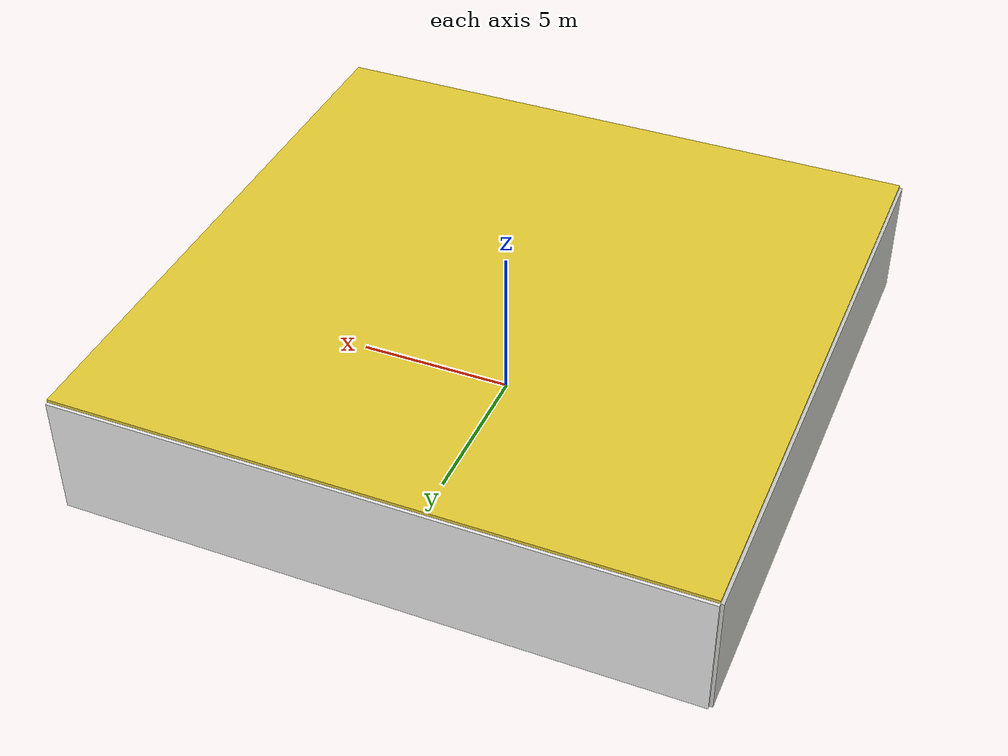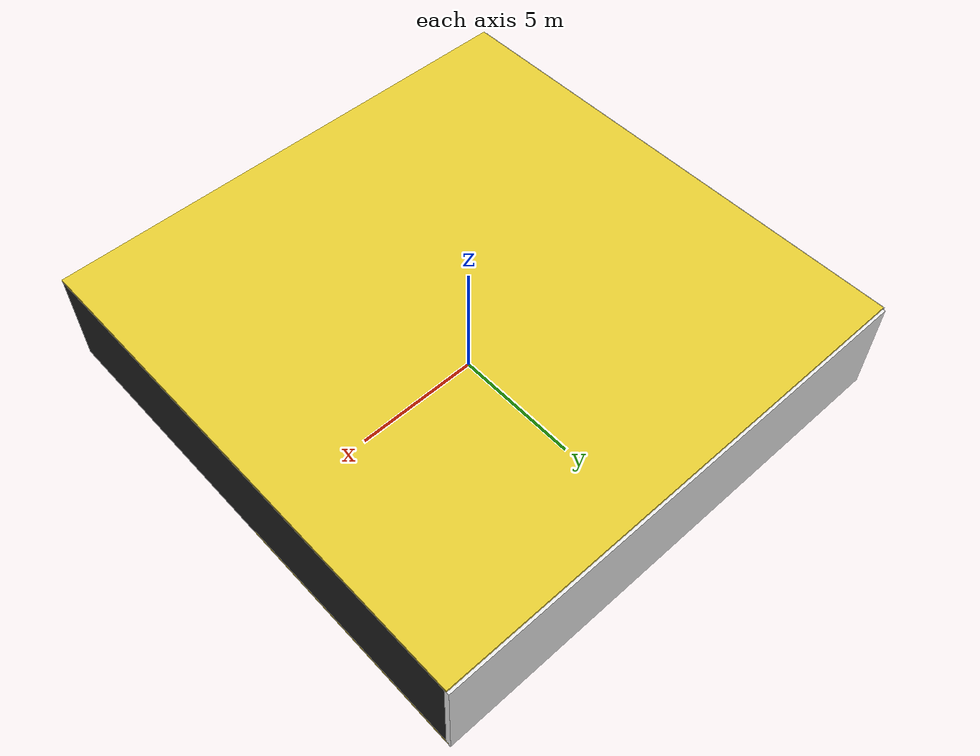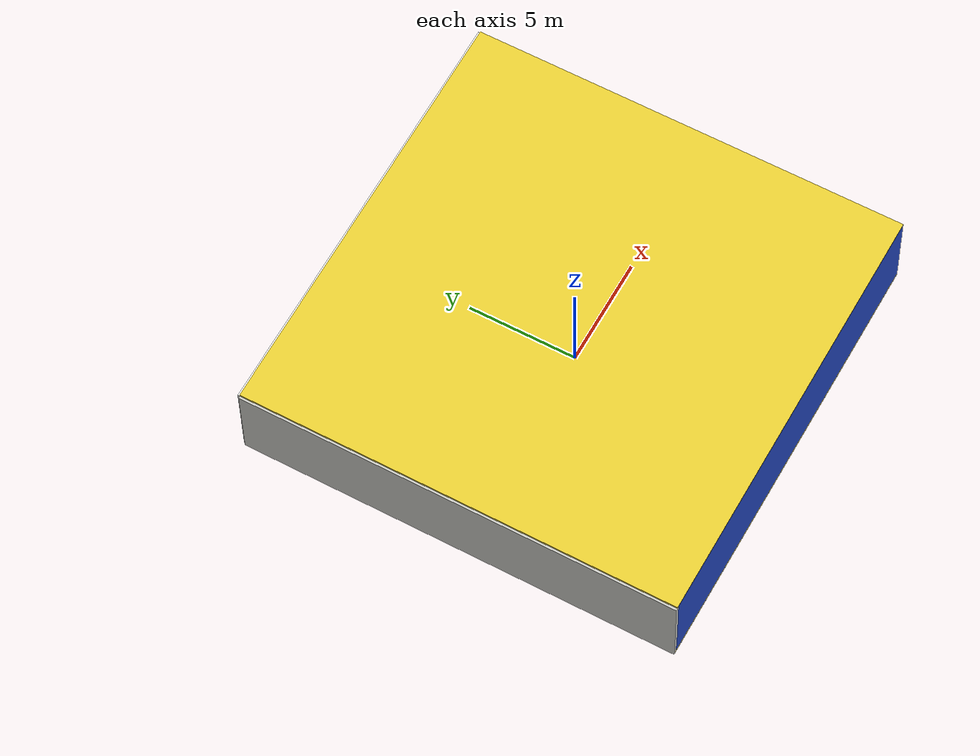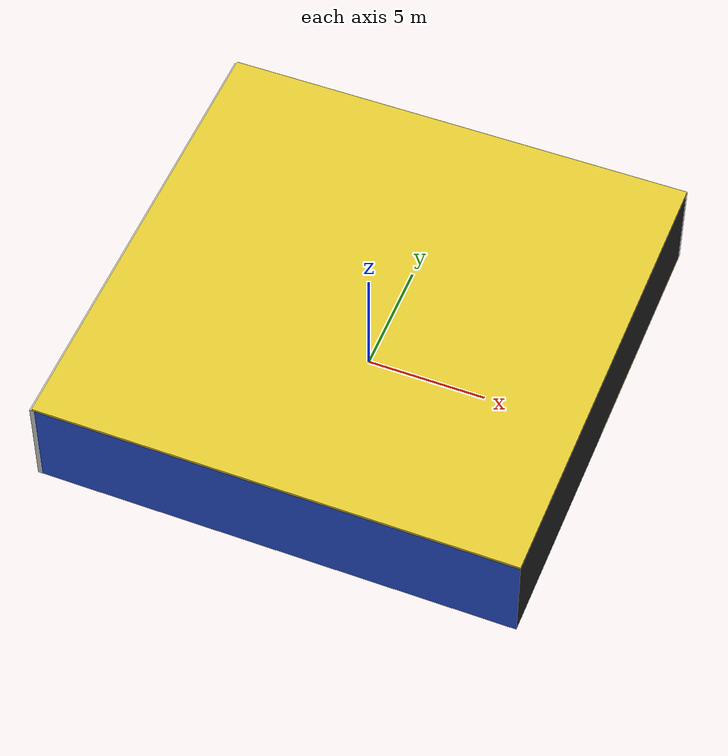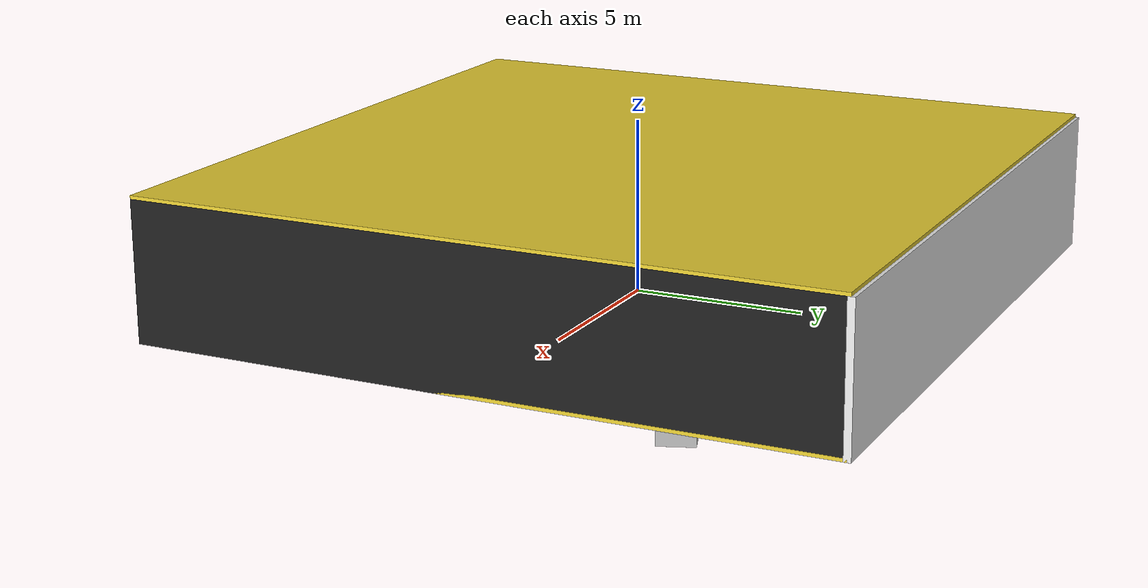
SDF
<sdf version="1.4">
 <world name="default">
  <physics type="ode">
   <max_step_size>0.001</max_step_size>
   <real_time_factor>1</real_time_factor>
   <real_time_update_rate>1000</real_time_update_rate>
   <gravity>0 0 -9.8</gravity>
  </physics>
  <scene><ambient>0.4 0.4 0.4 1</ambient><background>0.7 0.7 0.7 1</background><shadows>1</shadows></scene>
  <model name="Surrounding">
   <static>1</static>
   <link name="Ceiling">
    <collision name="Ceiling_Collision"><geometry><box><size>20 20 0.1</size></box></geometry></collision>
    <visual name="Ceiling_Visual">
     <geometry><box><size>20 20 0.1</size></box></geometry>
     <material>
      <script><uri>file://media/materials/scripts/gazebo.material</uri><name>Gazebo/ZincYellow</name></script>
     </material>
    </visual>
    <pose>0 0 4.05 0 0 0</pose>
   </link>
   <link name="Wall_South">
    <collision name="Wall_South_Collision">
     <geometry><box><size>20 0 4</size></box></geometry>
     <pose>0 0 2 0 -0 0</pose>
    </collision>
    <visual name="Wall_South_Visual">
     <pose>0 0 2 0 -0 0</pose>
     <geometry><box><size>20 0 4</size></box></geometry>
     <material>
      <script><uri>file://media/materials/scripts/gazebo.material</uri><name>Gazebo/BlueGlow</name></script>
     </material>
    </visual>
    <velocity_decay><linear>0</linear><angular>0</angular></velocity_decay>
    <pose>0 -10 0 0 -0 0</pose>
   </link>
   <link name="Wall_East">
    <collision name="Wall_21_Collision">
     <geometry><box><size>20 0 4</size></box></geometry>
     <pose>0 0 2 0 -0 0</pose>
    </collision>
    <visual name="Wall_21_Visual">
     <pose>0 0 2 0 -0 0</pose>
     <geometry><box><size>20 0 4</size></box></geometry>
     <material>
      <script><uri>file://media/materials/scripts/gazebo.material</uri><name>Gazebo/FlatBlack</name></script>
     </material>
    </visual>
    <velocity_decay><linear>0</linear><angular>0</angular></velocity_decay>
    <pose>10 0 0 0 -0 1.5708</pose>
   </link>
   <link name="Wall_North">
    <collision name="Wall_22_Collision">
     <geometry><box><size>20 0.2 4</size></box></geometry>
     <pose>0 0 2 0 -0 0</pose>
    </collision>
    <visual name="Wall_22_Visual">
     <pose>0 0 2 0 -0 0</pose>
     <geometry><box><size>20 0.2 4</size></box></geometry>
     <material>
      <script><uri>file://media/materials/scripts/gazebo.material</uri><name>Gazebo/WhiteGlow</name></script>
     </material>
    </visual>
    <velocity_decay><linear>0</linear><angular>0</angular></velocity_decay>
    <pose>0 10 0 0 -0 0</pose>
   </link>
   <link name="Wall_West">
    <collision name="Wall_23_Collision">
     <geometry><box><size>20 0.2 4</size></box></geometry>
     <pose>0 0 2 0 -0 0</pose>
    </collision>
    <visual name="Wall_23_Visual">
     <pose>0 0 2 0 -0 0</pose>
     <geometry><box><size>20 0.2 4</size></box></geometry>
     <material>
      <script><uri>file://media/materials/scripts/gazebo.material</uri><name>Gazebo/CeilingTiled</name></script>
     </material>
    </visual>
    <velocity_decay><linear>0</linear><angular>0</angular></velocity_decay>
    <pose>-10 0 0 0 0 -1.5708</pose>
   </link>
   <link name="Ground_link">
    <collision name="collision">
     <pose>0 0 .05 0 -0 0</pose>
     <geometry><box><size>20 20 0.1</size></box></geometry>
    </collision>
    <visual name="visual">
     <pose>0 0 .05 0 -0 0</pose>
     <geometry><box><size>20 20 0.1</size></box></geometry>
     <material>
      <script><uri>file://media/materials/scripts/gazebo.material</uri><name>Gazebo/ZincYellow</name></script>
     </material>
    </visual>
   </link>
   <static>1</static>
  </model>
  <spherical_coordinates>
   <surface_model>EARTH_WGS84</surface_model>
   <latitude_deg>0</latitude_deg>
   <longitude_deg>0</longitude_deg>
   <elevation>0</elevation>
   <heading_deg>0</heading_deg>
  </spherical_coordinates>
  <light name="lightball_0" type="diffuse">
   <diffuse>0.8 0.8 0.8 1</diffuse>
   <specular>0.2 0.2 0.2 1</specular>
   <attenuation>
    <range>100</range>
    <constant>0.7</constant>
    <linear>0.01</linear>
    <quadratic>0.001</quadratic>
   </attenuation>
   <direction>-0.5 0.1 -0.9</direction>
   <pose>-1.98930848571 -8.20134768983 3.68221726181 0 0 0</pose>
  </light>
  <light name="lightball_1" type="diffuse">
   <diffuse>0.8 0.8 0.8 1</diffuse>
   <specular>0.2 0.2 0.2 1</specular>
   <attenuation>
    <range>100</range>
    <constant>0.7</constant>
    <linear>0.01</linear>
    <quadratic>0.001</quadratic>
   </attenuation>
   <direction>-0.5 0.1 -0.9</direction>
   <pose>-6.43409417533 5.02304272452 3.06853375459 0 0 0</pose>
  </light>
  <light name="lightball_2" type="diffuse">
   <diffuse>0.8 0.8 0.8 1</diffuse>
   <specular>0.2 0.2 0.2 1</specular>
   <attenuation>
    <range>100</range>
    <constant>0.7</constant>
    <linear>0.01</linear>
    <quadratic>0.001</quadratic>
   </attenuation>
   <direction>-0.5 0.1 -0.9</direction>
   <pose>-1.55755611255 -1.91385528187 3.73600557243 0 0 0</pose>
  </light>
  <light name="lightball_3" type="diffuse">
   <diffuse>0.8 0.8 0.8 1</diffuse>
   <specular>0.2 0.2 0.2 1</specular>
   <attenuation>
    <range>100</range>
    <constant>0.7</constant>
    <linear>0.01</linear>
    <quadratic>0.001</quadratic>
   </attenuation>
   <direction>-0.5 0.1 -0.9</direction>
   <pose>4.78979581683 4.99740296202 1.7756078633 0 0 0</pose>
  </light>
  <light name="lightball_4" type="diffuse">
   <diffuse>0.8 0.8 0.8 1</diffuse>
   <specular>0.2 0.2 0.2 1</specular>
   <attenuation>
    <range>100</range>
    <constant>0.7</constant>
    <linear>0.01</linear>
    <quadratic>0.001</quadratic>
   </attenuation>
   <direction>-0.5 0.1 -0.9</direction>
   <pose>-0.723203762479 6.03310590287 1.17225110334 0 0 0</pose>
  </light>
  <light name="lightball_5" type="diffuse">
   <diffuse>0.8 0.8 0.8 1</diffuse>
   <specular>0.2 0.2 0.2 1</specular>
   <attenuation>
    <range>100</range>
    <constant>0.7</constant>
    <linear>0.01</linear>
    <quadratic>0.001</quadratic>
   </attenuation>
   <direction>-0.5 0.1 -0.9</direction>
   <pose>7.08351496928 -4.79840692289 1.02284662682 0 0 0</pose>
  </light>
  <light name="lightball_6" type="diffuse">
   <diffuse>0.8 0.8 0.8 1</diffuse>
   <specular>0.2 0.2 0.2 1</specular>
   <attenuation>
    <range>100</range>
    <constant>0.7</constant>
    <linear>0.01</linear>
    <quadratic>0.001</quadratic>
   </attenuation>
   <direction>-0.5 0.1 -0.9</direction>
   <pose>-2.63418252124 -9.15642186192 1.58487119418 0 0 0</pose>
  </light>
  <light name="lightball_7" type="diffuse">
   <diffuse>0.8 0.8 0.8 1</diffuse>
   <specular>0.2 0.2 0.2 1</specular>
   <attenuation>
    <range>100</range>
    <constant>0.7</constant>
    <linear>0.01</linear>
    <quadratic>0.001</quadratic>
   </attenuation>
   <direction>-0.5 0.1 -0.9</direction>
   <pose>1.68579810932 -1.05231712542 1.240598012 0 0 0</pose>
  </light>
  <light name="lightball_8" type="diffuse">
   <diffuse>0.8 0.8 0.8 1</diffuse>
   <specular>0.2 0.2 0.2 1</specular>
   <attenuation>
    <range>100</range>
    <constant>0.7</constant>
    <linear>0.01</linear>
    <quadratic>0.001</quadratic>
   </attenuation>
   <direction>-0.5 0.1 -0.9</direction>
   <pose>-0.727717039889 -2.0742210649 1.29745080572 0 0 0</pose>
  </light>
  <light name="lightball_9" type="diffuse">
   <diffuse>0.8 0.8 0.8 1</diffuse>
   <specular>0.2 0.2 0.2 1</specular>
   <attenuation>
    <range>100</range>
    <constant>0.7</constant>
    <linear>0.01</linear>
    <quadratic>0.001</quadratic>
   </attenuation>
   <direction>-0.5 0.1 -0.9</direction>
   <pose>-1.17102079203 1.96898742417 2.02023092495 0 0 0</pose>
  </light>
  <light name="lightball_10" type="diffuse">
   <diffuse>0.8 0.8 0.8 1</diffuse>
   <specular>0.2 0.2 0.2 1</specular>
   <attenuation>
    <range>100</range>
    <constant>0.7</constant>
    <linear>0.01</linear>
    <quadratic>0.001</quadratic>
   </attenuation>
   <direction>-0.5 0.1 -0.9</direction>
   <pose>-2.48244905788 -5.73566222448 2.20280594704 0 0 0</pose>
  </light>
  <light name="lightball_11" type="diffuse">
   <diffuse>0.8 0.8 0.8 1</diffuse>
   <specular>0.2 0.2 0.2 1</specular>
   <attenuation>
    <range>100</range>
    <constant>0.7</constant>
    <linear>0.01</linear>
    <quadratic>0.001</quadratic>
   </attenuation>
   <direction>-0.5 0.1 -0.9</direction>
   <pose>7.75591828208 -9.00571547321 3.24039966867 0 0 0</pose>
  </light>
  <include><uri>model://cabinet</uri><pose>-5.39910395719 -7.23579602397 0 0 0 2.35132746937</pose></include>
  <include><uri>model://table</uri><pose>-5.49207704305 -4.19164787892 0 0 0 1.29514574986</pose></include>
  <include><uri>model://table</uri><pose>0.862378848037 7.3809025935 0 0 0 3.09977172378</pose></include>
  <include>
   <uri>model://robocup_3Dsim_goal</uri>
   <pose>4.10980069911 -8.4999367677 0 0 0 0.0638574262714</pose>
  </include>
  <include>
   <uri>model://textured_shapes</uri>
   <pose>6.49272508304 -4.76164538232 0 0 0 1.88219629827</pose>
  </include>
  <include>
   <uri>model://textured_shapes</uri>
   <pose>8.61758955817 6.75471404963 0 0 0 0.342218108651</pose>
  </include>
 </world>
</sdf>

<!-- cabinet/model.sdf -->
<sdf version="1.5">
  <model name="cabinet">
    <static>true</static>
    <link name="cabinet_bottom_plate">
      <inertial>
        <pose>0 0 -1 0 0 0</pose>
        <inertia>
          <ixx>2.050000</ixx>
          <ixy>0</ixy>
          <ixz>0</ixz>
          <iyy>2.050000</iyy>
          <iyz>0</iyz>
          <izz>2.050000</izz>
        </inertia>
        <mass>25.000000</mass>
      </inertial>
      <collision name="cabinet_bottom_plate_geom">
        <pose>0 0 0.010000 0 0 0</pose>
        <geometry>
          <box>
            <size>0.450000 0.450000 0.020000</size>
          </box>
        </geometry>
      </collision>
      <visual name="cabinet_bottom_plate_geom_visual">
        <pose>0 0 0.010000 0 0 0</pose>
        <geometry>
          <box>
            <size>0.450000 0.450000 0.020000</size>
          </box>
        </geometry>
        <material>
          <script>
            <uri>model://media/materials/scripts/gazebo.material</uri>
            <name>Gazebo/Wood</name>
          </script>
        </material>
      </visual>
      <collision name="cabinet_bottom_plate_geom_cabinet_back_plate">
        <pose>0.235000 0 0.510000 0 0 0</pose>
        <geometry>
          <box>
            <size>0.020000 0.450000 1.020000</size>
          </box>
        </geometry>
      </collision>
      <visual name="cabinet_bottom_plate_geom_cabinet_back_plate_visual">
        <pose>0.235000 0 0.510000 0 0 0</pose>
        <geometry>
          <box>
            <size>0.020000 0.450000 1.020000</size>
          </box>
        </geometry>
        <material>
          <script>
            <uri>model://media/materials/scripts/gazebo.material</uri>
            <name>Gazebo/Wood</name>
          </script>
        </material>
      </visual>
      <collision name="cabinet_bottom_plate_geom_cabinet_left_plate">
        <pose>0 0.235000 0.510000 0 0 0</pose>
        <geometry>
          <box>
            <size>0.450000 0.020000 1.020000</size>
          </box>
        </geometry>
      </collision>
      <visual name="cabinet_bottom_plate_geom_cabinet_left_plate_visual">
        <pose>0 0.235000 0.510000 0 0 0</pose>
        <geometry>
          <box>
            <size>0.450000 0.020000 1.020000</size>
          </box>
        </geometry>
        <material>
          <script>
            <uri>model://media/materials/scripts/gazebo.material</uri>
            <name>Gazebo/Wood</name>
          </script>
        </material>
      </visual>
      <collision name="cabinet_bottom_plate_geom_cabinet_middle_plate">
        <pose>0 0 0.510000 0 0 0</pose>
        <geometry>
          <box>
            <size>0.450000 0.450000 0.020000</size>
          </box>
        </geometry>
      </collision>
      <visual name="cabinet_bottom_plate_geom_cabinet_middle_plate_visual">
        <pose>0 0 0.510000 0 0 0</pose>
        <geometry>
          <box>
            <size>0.450000 0.450000 0.020000</size>
          </box>
        </geometry>
        <material>
          <script>
            <uri>model://media/materials/scripts/gazebo.material</uri>
            <name>Gazebo/Wood</name>
          </script>
        </material>
      </visual>
      <collision name="cabinet_bottom_plate_geom_cabinet_right_plate">
        <pose>0 -0.235000 0.510000 0 0 0</pose>
        <geometry>
          <box>
            <size>0.450000 0.020000 1.020000</size>
          </box>
        </geometry>
      </collision>
      <visual name="cabinet_bottom_plate_geom_cabinet_right_plate_visual">
        <pose>0 -0.235000 0.510000 0 0 0</pose>
        <geometry>
          <box>
            <size>0.450000 0.020000 1.020000</size>
          </box>
        </geometry>
        <material>
          <script>
            <uri>model://media/materials/scripts/gazebo.material</uri>
            <name>Gazebo/Wood</name>
          </script>
        </material>
      </visual>
      <collision name="cabinet_bottom_plate_geom_cabinet_top_plate">
        <pose>0 0 1.010000 0 0 0</pose>
        <geometry>
          <box>
            <size>0.450000 0.450000 0.020000</size>
          </box>
        </geometry>
      </collision>
      <visual name="cabinet_bottom_plate_geom_cabinet_top_plate_visual">
        <pose>0 0 1.010000 0 0 0</pose>
        <geometry>
          <box>
            <size>0.450000 0.450000 0.020000</size>
          </box>
        </geometry>
        <material>
          <script>
            <uri>model://media/materials/scripts/gazebo.material</uri>
            <name>Gazebo/Wood</name>
          </script>
        </material>
      </visual>
    </link>
  </model>
</sdf>

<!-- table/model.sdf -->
<sdf version="1.5">
  <model name="table">
    <static>true</static>
    <link name="link">
      <collision name="surface">
        <pose>0 0 1.0 0 0 0</pose>
        <geometry>
          <box>
            <size>1.5 0.8 0.03</size>
          </box>
        </geometry>
        <surface>
          <friction>
            <ode>
              <mu>0.6</mu>
              <mu2>0.6</mu2>
            </ode>
          </friction>
        </surface>
      </collision>
      <visual name="visual1">
        <pose>0 0 1.0 0 0 0</pose>
        <geometry>
          <box>
            <size>1.5 0.8 0.03</size>
          </box>
        </geometry>
        <material>
          <script>
            <uri>model://media/materials/scripts/gazebo.material</uri>
            <name>Gazebo/Wood</name>
          </script>
        </material>
      </visual>
      <collision name="front_left_leg">
        <pose>0.68 0.38 0.5 0 0 0</pose>
        <geometry>
          <cylinder>
            <radius>0.02</radius>
            <length>1.0</length>
          </cylinder>
        </geometry>
      </collision>
      <visual name="front_left_leg">
        <pose>0.68 0.38 0.5 0 0 0</pose>
        <geometry>
          <cylinder>
            <radius>0.02</radius>
            <length>1.0</length>
          </cylinder>
        </geometry>
        <material>
          <script>
            <uri>model://media/materials/scripts/gazebo.material</uri>
            <name>Gazebo/Grey</name>
          </script>
        </material>
      </visual>
      <collision name="front_right_leg">
        <pose>0.68 -0.38 0.5 0 0 0</pose>
        <geometry>
          <cylinder>
            <radius>0.02</radius>
            <length>1.0</length>
          </cylinder>
        </geometry>
      </collision>
      <visual name="front_right_leg">
        <pose>0.68 -0.38 0.5 0 0 0</pose>
        <geometry>
          <cylinder>
            <radius>0.02</radius>
            <length>1.0</length>
          </cylinder>
        </geometry>
        <material>
          <script>
            <uri>model://media/materials/scripts/gazebo.material</uri>
            <name>Gazebo/Grey</name>
          </script>
        </material>
      </visual>
      <collision name="back_right_leg">
        <pose>-0.68 -0.38 0.5 0 0 0</pose>
        <geometry>
          <cylinder>
            <radius>0.02</radius>
            <length>1.0</length>
          </cylinder>
        </geometry>
      </collision>
      <visual name="back_right_leg">
        <pose>-0.68 -0.38 0.5 0 0 0</pose>
        <geometry>
          <cylinder>
            <radius>0.02</radius>
            <length>1.0</length>
          </cylinder>
        </geometry>
        <material>
          <script>
            <uri>model://media/materials/scripts/gazebo.material</uri>
            <name>Gazebo/Grey</name>
          </script>
        </material>
      </visual>
      <collision name="back_left_leg">
        <pose>-0.68 0.38 0.5 0 0 0</pose>
        <geometry>
          <cylinder>
            <radius>0.02</radius>
            <length>1.0</length>
          </cylinder>
        </geometry>
      </collision>
      <visual name="back_left_leg">
        <pose>-0.68 0.38 0.5 0 0 0</pose>
        <geometry>
          <cylinder>
            <radius>0.02</radius>
            <length>1.0</length>
          </cylinder>
        </geometry>
        <material>
          <script>
            <uri>model://media/materials/scripts/gazebo.material</uri>
            <name>Gazebo/Grey</name>
          </script>
        </material>
      </visual>
    </link>
  </model>
</sdf>

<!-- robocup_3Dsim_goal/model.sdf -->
<sdf version="1.5">
  <model name="robocup_3d_goal">
    <static>true</static>
    <link name="left_post">
      <pose>0 1.05 0.45 0 0 0</pose>
      <collision name="collision">
        <geometry>
          <cylinder>
            <radius>0.05</radius>
            <length>0.9</length>
          </cylinder>
        </geometry>
      </collision>
      <visual name="visual">
        <geometry>
          <cylinder>
            <radius>0.05</radius>
            <length>0.9</length>
          </cylinder>
        </geometry>
        <material>
          <script>
            <uri>file://media/materials/scripts/gazebo.material</uri>
            <name>Gazebo/ZincYellow</name>
          </script>
        </material>
      </visual>
    </link>
    <link name="left_support_horiz_lower">
      <pose>0.30 1.05 0.01 0 0 0</pose>
      <collision name="collision">
        <geometry>
          <box>
            <size>0.50 0.02 0.02</size>
          </box>
        </geometry>
      </collision>
      <visual name="visual">
        <geometry>
          <box>
            <size>0.50 0.02 0.02</size>
          </box>
        </geometry>
        <material>
          <script>
            <uri>file://media/materials/scripts/gazebo.material</uri>
            <name>Gazebo/White</name>
          </script>
        </material>
      </visual>
    </link>
    <link name="left_support_horiz_upper">
      <pose>0.30 1.05 0.79 0 0 0</pose>
      <collision name="collision">
        <geometry>
          <box>
            <size>0.50 0.02 0.02</size>
          </box>
        </geometry>
      </collision>
      <visual name="visual">
        <geometry>
          <box>
            <size>0.50 0.02 0.02</size>
          </box>
        </geometry>
        <material>
          <script>
            <uri>file://media/materials/scripts/gazebo.material</uri>
            <name>Gazebo/White</name>
          </script>
        </material>
      </visual>
    </link>
    <link name="left_support_vertical">
      <pose>0.56 1.05 0.4 0 1.5708 0</pose>
      <collision name="collision">
        <geometry>
          <box>
            <size>0.80 0.02 0.02</size>
          </box>
        </geometry>
      </collision>
      <visual name="visual">
        <geometry>
          <box>
            <size>0.80 0.02 0.02</size>
          </box>
        </geometry>
        <material>
          <script>
            <uri>file://media/materials/scripts/gazebo.material</uri>
            <name>Gazebo/White</name>
          </script>
        </material>
      </visual>
    </link>
    <link name="right_support_horiz_lower">
      <pose>0.30 -1.05 0.01 0 0 0</pose>
      <collision name="collision">
        <geometry>
          <box>
            <size>0.50 0.02 0.02</size>
          </box>
        </geometry>
      </collision>
      <visual name="visual">
        <geometry>
          <box>
            <size>0.50 0.02 0.02</size>
          </box>
        </geometry>
        <material>
          <script>
            <uri>file://media/materials/scripts/gazebo.material</uri>
            <name>Gazebo/White</name>
          </script>
        </material>
      </visual>
    </link>
    <link name="right_support_horiz_upper">
      <pose>0.30 -1.05 0.79 0 0 0</pose>
      <collision name="collision">
        <geometry>
          <box>
            <size>0.50 0.02 0.02</size>
          </box>
        </geometry>
      </collision>
      <visual name="visual">
        <geometry>
          <box>
            <size>0.50 0.02 0.02</size>
          </box>
        </geometry>
        <material>
          <script>
            <uri>file://media/materials/scripts/gazebo.material</uri>
            <name>Gazebo/White</name>
          </script>
        </material>
      </visual>
    </link>
    <link name="right_support_vertical">
      <pose>0.56 -1.05 0.4 0 1.5708 0</pose>
      <collision name="collision">
        <geometry>
          <box>
            <size>0.80 0.02 0.02</size>
          </box>
        </geometry>
      </collision>
      <visual name="visual">
        <geometry>
          <box>
            <size>0.80 0.02 0.02</size>
          </box>
        </geometry>
        <material>
          <script>
            <uri>file://media/materials/scripts/gazebo.material</uri>
            <name>Gazebo/White</name>
          </script>
        </material>
      </visual>
    </link>
    <link name="center_support_horiz_lower">
      <pose>0.56 0 0.01 0 1.5708 0</pose>
      <collision name="collision">
        <geometry>
          <box>
            <size>0.02 2.08 0.02</size>
          </box>
        </geometry>
      </collision>
      <visual name="visual">
        <geometry>
          <box>
            <size>0.02 2.08 0.02</size>
          </box>
        </geometry>
        <material>
          <script>
            <uri>file://media/materials/scripts/gazebo.material</uri>
            <name>Gazebo/White</name>
          </script>
        </material>
      </visual>
    </link>
    <link name="center_support_horiz_upper">
      <pose>0.56 0 0.79 0 1.5708 0</pose>
      <collision name="collision">
        <geometry>
          <box>
            <size>0.02 2.08 0.02</size>
          </box>
        </geometry>
      </collision>
      <visual name="visual">
        <geometry>
          <box>
            <size>0.02 2.08 0.02</size>
          </box>
        </geometry>
        <material>
          <script>
            <uri>file://media/materials/scripts/gazebo.material</uri>
            <name>Gazebo/White</name>
          </script>
        </material>
      </visual>
    </link>
    <link name="right_post">
      <pose>0 -1.05 0.45 0 0 0</pose>
      <collision name="collision">
        <geometry>
          <cylinder>
            <radius>0.05</radius>
            <length>0.9</length>
          </cylinder>
        </geometry>
      </collision>
      <visual name="visual">
        <geometry>
          <cylinder>
            <radius>0.05</radius>
            <length>0.9</length>
          </cylinder>
        </geometry>
        <material>
          <script>
            <uri>file://media/materials/scripts/gazebo.material</uri>
            <name>Gazebo/ZincYellow</name>
          </script>
        </material>
      </visual>
    </link>
    <link name="crossbar">
      <pose>0 0 0.85 1.57 1.57 0</pose>
      <collision name="collision">
        <geometry>
          <cylinder>
            <radius>0.05</radius>
            <length>2.0</length>
          </cylinder>
        </geometry>
      </collision>
      <visual name="visual">
        <geometry>
          <cylinder>
            <radius>0.05</radius>
            <length>2.0</length>
          </cylinder>
        </geometry>
        <material>
          <script>
            <uri>file://media/materials/scripts/gazebo.material</uri>
            <name>Gazebo/ZincYellow</name>
          </script>
        </material>
      </visual>
    </link>
    <link name="center_net">
      <pose>0.56 0 0.40 0 0 0</pose>
      <collision name="collision">
        <geometry>
          <box>
            <size>0.01 2.1 0.80</size>
          </box>
        </geometry>
      </collision>
      <visual name="visual">
        <geometry>
          <box>
            <size>0.01 2.1 0.80</size>
          </box>
        </geometry>
        <material>
          <script>
            <uri>model://../model_source/models/robocup09_spl_field/materials/scripts/</uri>
            <uri>model://../model_source/models/robocup09_spl_field/materials/textures/</uri>
            <name>RoboCup/Net</name>
          </script>
        </material>
      </visual>
    </link>
    <link name="left_net">
      <pose>0.30 1.05 0.40 0 0 0</pose>
      <collision name="collision">
        <geometry>
          <box>
            <size>0.50 0.01 0.76</size>
          </box>
        </geometry>
      </collision>
      <visual name="visual">
        <geometry>
          <box>
            <size>0.50 0.01 0.76</size>
          </box>
        </geometry>
        <material>
          <script>
            <uri>model://../model_source/models/robocup09_spl_field/materials/scripts/</uri>
            <uri>model://../model_source/models/robocup09_spl_field/materials/textures/</uri>
            <name>RoboCup/Net</name>
          </script>
        </material>
      </visual>
    </link>
    <link name="right_net">
      <pose>0.30 -1.05 0.40 0 0 0</pose>
      <collision name="collision">
        <geometry>
          <box>
            <size>0.50 0.01 0.76</size>
          </box>
        </geometry>
      </collision>
      <visual name="visual">
        <geometry>
          <box>
            <size>0.50 0.01 0.76</size>
          </box>
        </geometry>
        <material>
          <script>
            <uri>model://../model_source/models/robocup09_spl_field/materials/scripts/</uri>
            <uri>model://../model_source/models/robocup09_spl_field/materials/textures/</uri>
            <name>RoboCup/Net</name>
          </script>
        </material>
      </visual>
    </link>
  </model>
</sdf>

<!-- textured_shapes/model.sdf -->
<sdf version="1.6">
  <model name="textured_shapes">
    <pose>0 0 0.5 0 0 0</pose>
    <link name="box">
      <pose>0 -1.5 0 0 0 0</pose>
      <collision name="collision">
        <geometry>
          <box>
            <size>1 1 1</size>
          </box>
        </geometry>
      </collision>
      <visual name="visual">
        <geometry>
          <box>
            <size>1 1 1</size>
          </box>
        </geometry>
        <material>
          <script>
            <uri>model://../model_source/models/textured_shapes/materials/scripts</uri>
            <uri>model://../model_source/models/textured_shapes/materials/textures</uri>
            <name>TexturedShape/Squares</name>
          </script>
        </material>
      </visual>
    </link>
    <link name="sphere">
      <collision name="collision">
        <geometry>
          <sphere>
            <radius>0.5</radius>
          </sphere>
        </geometry>
      </collision>
      <visual name="visual">
        <geometry>
          <sphere>
            <radius>0.5</radius>
          </sphere>
        </geometry>
        <material>
          <script>
            <uri>model://../model_source/models/textured_shapes/materials/scripts</uri>
            <uri>model://../model_source/models/textured_shapes/materials/textures</uri>
            <name>TexturedShape/Squares</name>
          </script>
        </material>
      </visual>
    </link>
    <link name="cylinder">
      <pose>0 1.5 0 0 0 0</pose>
      <collision name="collision">
        <geometry>
          <cylinder>
            <radius>0.5</radius>
            <length>1</length>
          </cylinder>
        </geometry>
      </collision>
      <visual name="visual">
        <geometry>
          <cylinder>
            <radius>0.5</radius>
            <length>1</length>
          </cylinder>
        </geometry>
        <material>
          <script>
            <uri>model://../model_source/models/textured_shapes/materials/scripts</uri>
            <uri>model://../model_source/models/textured_shapes/materials/textures</uri>
            <name>TexturedShape/Squares</name>
          </script>
        </material>
      </visual>
    </link>
  </model>
</sdf>
